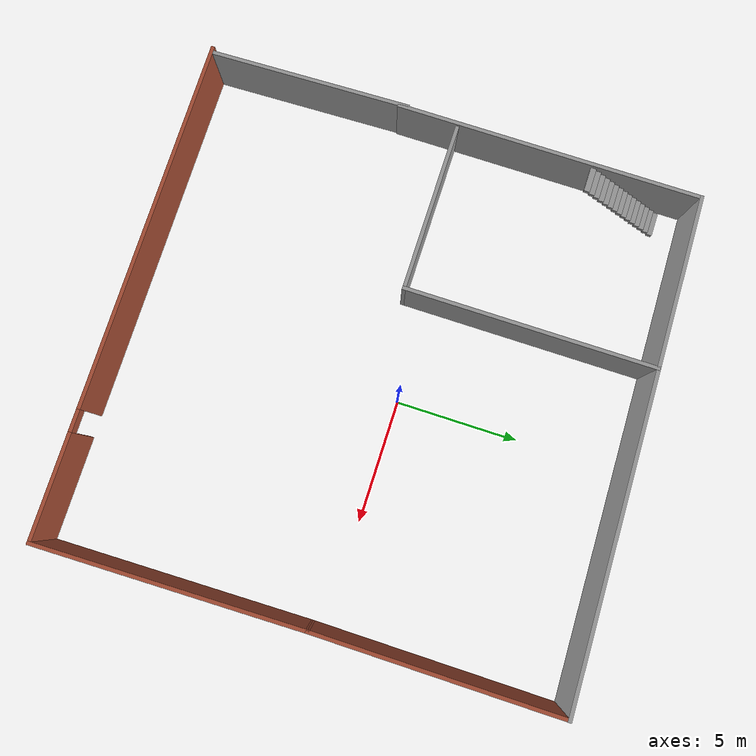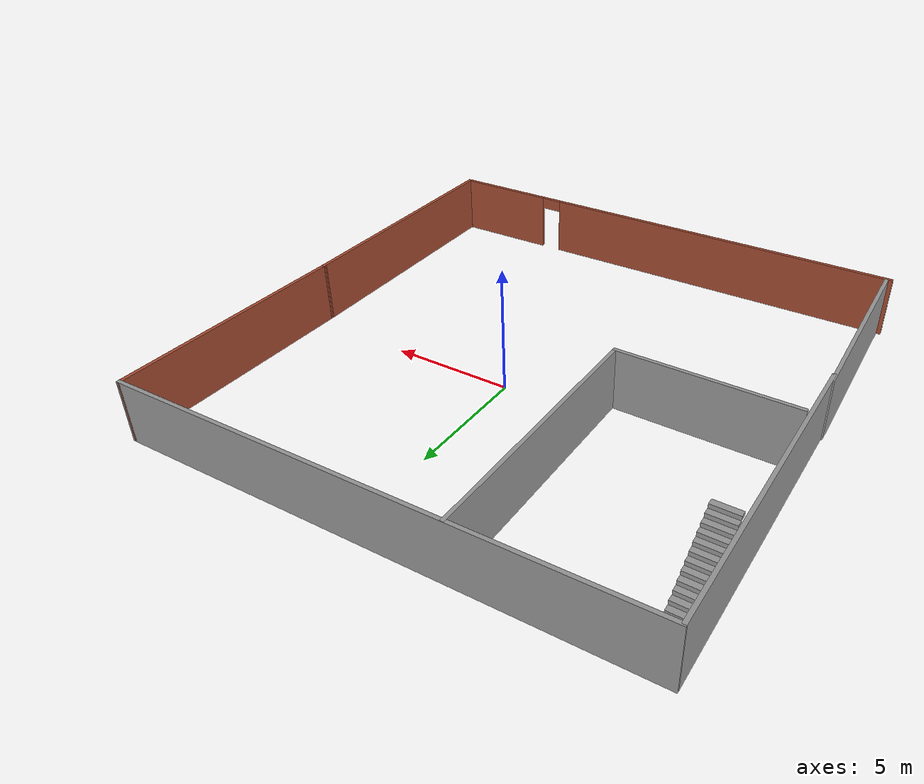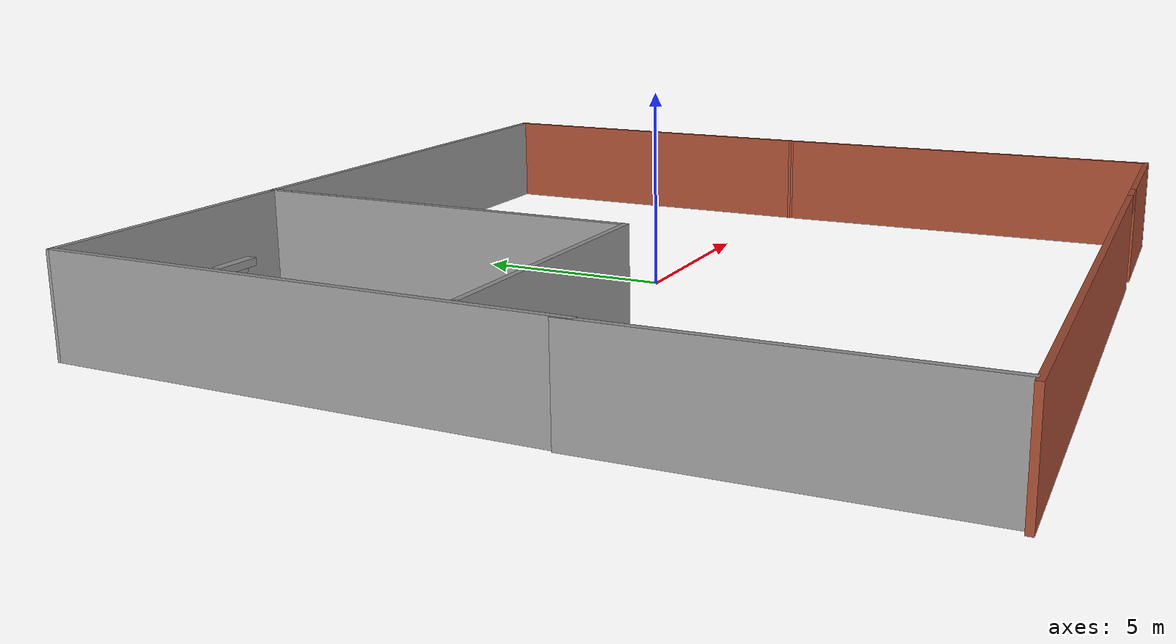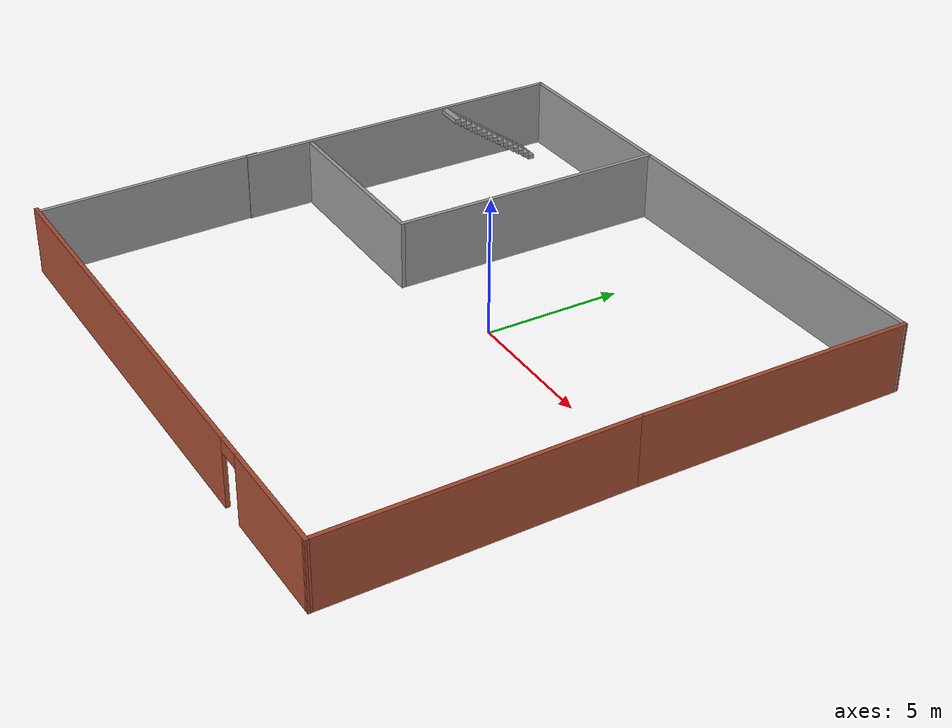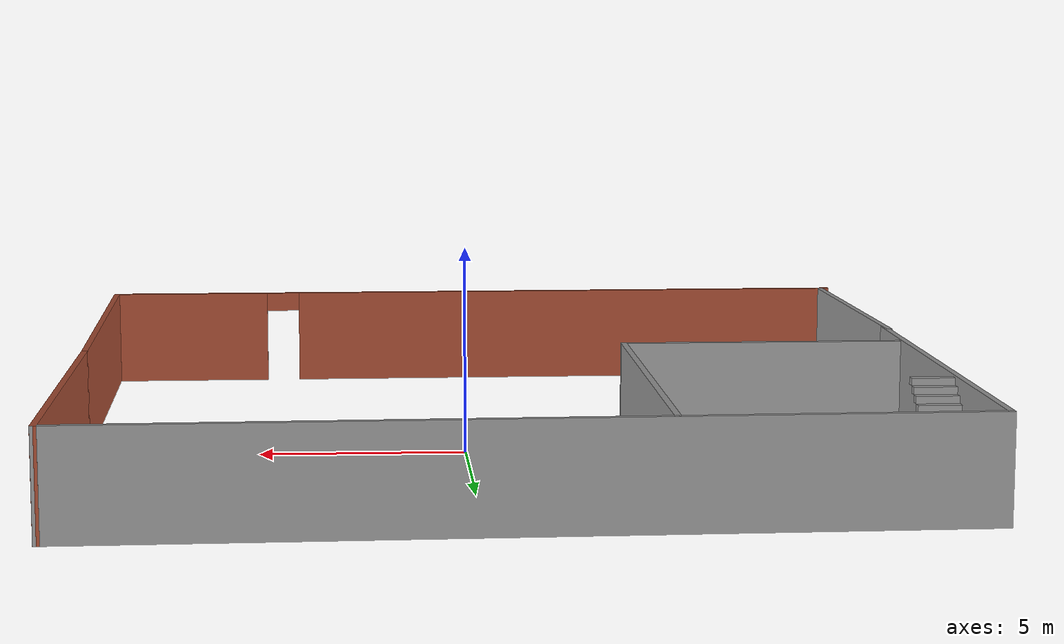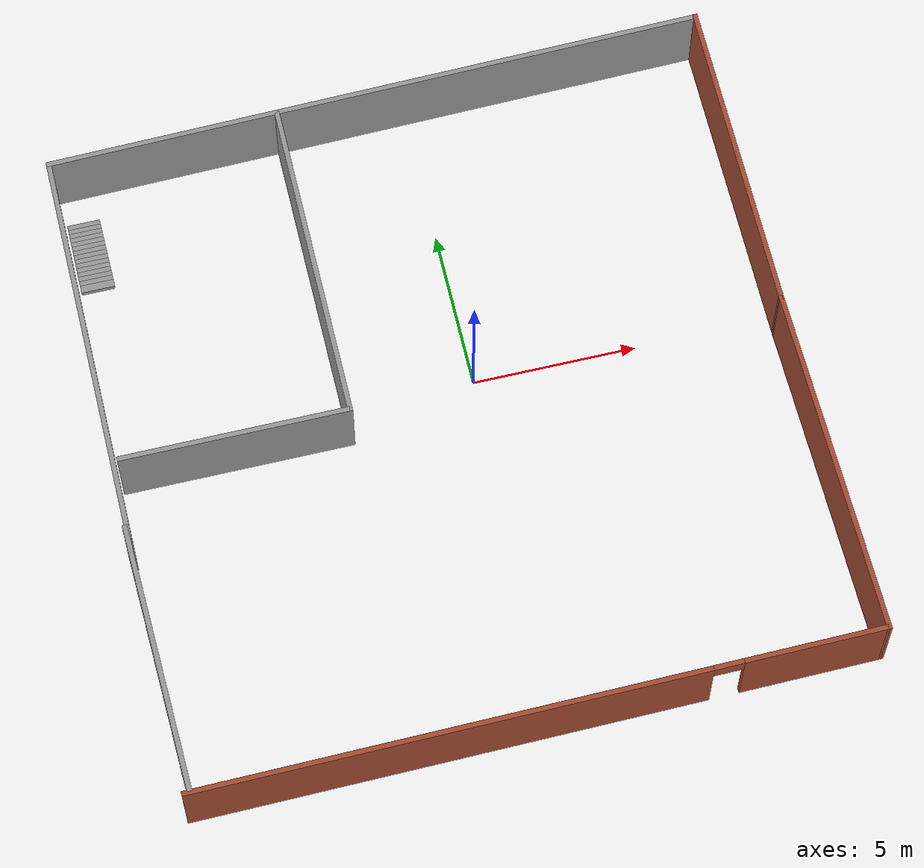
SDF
<?xml version='1.0'?>
<sdf version='1.6'>
  <model name='mybuilding'>
    <pose frame=''>-0.841687 -1.03925 0 0 -0 0</pose>
    <link name='Stairs_0'>
      <visual name='Stairs_0_Visual_0'>
        <pose frame=''>-9.54581 8.84688 0.083333 0 -0 0</pose>
        <geometry>
          <box>
            <size>1 0.233333 0.166667</size>
          </box>
        </geometry>
        <material>
          <script>
            <uri>file://media/materials/scripts/gazebo.material</uri>
            <name>Gazebo/Grey</name>
          </script>
          <ambient>1 1 1 1</ambient>
        </material>
        <meta>
          <layer>0</layer>
        </meta>
      </visual>
      <collision name='Stairs_0_Collision_0'>
        <geometry>
          <box>
            <size>1 0.233333 0.166667</size>
          </box>
        </geometry>
        <pose frame=''>-9.54581 8.84688 0.083333 0 -0 0</pose>
      </collision>
      <visual name='Stairs_0_Visual_1'>
        <pose frame=''>-9.54581 8.61355 0.25 0 -0 0</pose>
        <geometry>
          <box>
            <size>1 0.233333 0.166667</size>
          </box>
        </geometry>
        <material>
          <script>
            <uri>file://media/materials/scripts/gazebo.material</uri>
            <name>Gazebo/Grey</name>
          </script>
          <ambient>1 1 1 1</ambient>
        </material>
        <meta>
          <layer>0</layer>
        </meta>
      </visual>
      <collision name='Stairs_0_Collision_1'>
        <geometry>
          <box>
            <size>1 0.233333 0.166667</size>
          </box>
        </geometry>
        <pose frame=''>-9.54581 8.61355 0.25 0 -0 0</pose>
      </collision>
      <visual name='Stairs_0_Visual_2'>
        <pose frame=''>-9.54581 8.38021 0.416667 0 -0 0</pose>
        <geometry>
          <box>
            <size>1 0.233333 0.166667</size>
          </box>
        </geometry>
        <material>
          <script>
            <uri>file://media/materials/scripts/gazebo.material</uri>
            <name>Gazebo/Grey</name>
          </script>
          <ambient>1 1 1 1</ambient>
        </material>
        <meta>
          <layer>0</layer>
        </meta>
      </visual>
      <collision name='Stairs_0_Collision_2'>
        <geometry>
          <box>
            <size>1 0.233333 0.166667</size>
          </box>
        </geometry>
        <pose frame=''>-9.54581 8.38021 0.416667 0 -0 0</pose>
      </collision>
      <visual name='Stairs_0_Visual_3'>
        <pose frame=''>-9.54581 8.14688 0.583333 0 -0 0</pose>
        <geometry>
          <box>
            <size>1 0.233333 0.166667</size>
          </box>
        </geometry>
        <material>
          <script>
            <uri>file://media/materials/scripts/gazebo.material</uri>
            <name>Gazebo/Grey</name>
          </script>
          <ambient>1 1 1 1</ambient>
        </material>
        <meta>
          <layer>0</layer>
        </meta>
      </visual>
      <collision name='Stairs_0_Collision_3'>
        <geometry>
          <box>
            <size>1 0.233333 0.166667</size>
          </box>
        </geometry>
        <pose frame=''>-9.54581 8.14688 0.583333 0 -0 0</pose>
      </collision>
      <visual name='Stairs_0_Visual_4'>
        <pose frame=''>-9.54581 7.91355 0.75 0 -0 0</pose>
        <geometry>
          <box>
            <size>1 0.233333 0.166667</size>
          </box>
        </geometry>
        <material>
          <script>
            <uri>file://media/materials/scripts/gazebo.material</uri>
            <name>Gazebo/Grey</name>
          </script>
          <ambient>1 1 1 1</ambient>
        </material>
        <meta>
          <layer>0</layer>
        </meta>
      </visual>
      <collision name='Stairs_0_Collision_4'>
        <geometry>
          <box>
            <size>1 0.233333 0.166667</size>
          </box>
        </geometry>
        <pose frame=''>-9.54581 7.91355 0.75 0 -0 0</pose>
      </collision>
      <visual name='Stairs_0_Visual_5'>
        <pose frame=''>-9.54581 7.68021 0.916667 0 -0 0</pose>
        <geometry>
          <box>
            <size>1 0.233333 0.166667</size>
          </box>
        </geometry>
        <material>
          <script>
            <uri>file://media/materials/scripts/gazebo.material</uri>
            <name>Gazebo/Grey</name>
          </script>
          <ambient>1 1 1 1</ambient>
        </material>
        <meta>
          <layer>0</layer>
        </meta>
      </visual>
      <collision name='Stairs_0_Collision_5'>
        <geometry>
          <box>
            <size>1 0.233333 0.166667</size>
          </box>
        </geometry>
        <pose frame=''>-9.54581 7.68021 0.916667 0 -0 0</pose>
      </collision>
      <visual name='Stairs_0_Visual_6'>
        <pose frame=''>-9.54581 7.44688 1.08333 0 -0 0</pose>
        <geometry>
          <box>
            <size>1 0.233333 0.166667</size>
          </box>
        </geometry>
        <material>
          <script>
            <uri>file://media/materials/scripts/gazebo.material</uri>
            <name>Gazebo/Grey</name>
          </script>
          <ambient>1 1 1 1</ambient>
        </material>
        <meta>
          <layer>0</layer>
        </meta>
      </visual>
      <collision name='Stairs_0_Collision_6'>
        <geometry>
          <box>
            <size>1 0.233333 0.166667</size>
          </box>
        </geometry>
        <pose frame=''>-9.54581 7.44688 1.08333 0 -0 0</pose>
      </collision>
      <visual name='Stairs_0_Visual_7'>
        <pose frame=''>-9.54581 7.21355 1.25 0 -0 0</pose>
        <geometry>
          <box>
            <size>1 0.233333 0.166667</size>
          </box>
        </geometry>
        <material>
          <script>
            <uri>file://media/materials/scripts/gazebo.material</uri>
            <name>Gazebo/Grey</name>
          </script>
          <ambient>1 1 1 1</ambient>
        </material>
        <meta>
          <layer>0</layer>
        </meta>
      </visual>
      <collision name='Stairs_0_Collision_7'>
        <geometry>
          <box>
            <size>1 0.233333 0.166667</size>
          </box>
        </geometry>
        <pose frame=''>-9.54581 7.21355 1.25 0 -0 0</pose>
      </collision>
      <visual name='Stairs_0_Visual_8'>
        <pose frame=''>-9.54581 6.98021 1.41667 0 -0 0</pose>
        <geometry>
          <box>
            <size>1 0.233333 0.166667</size>
          </box>
        </geometry>
        <material>
          <script>
            <uri>file://media/materials/scripts/gazebo.material</uri>
            <name>Gazebo/Grey</name>
          </script>
          <ambient>1 1 1 1</ambient>
        </material>
        <meta>
          <layer>0</layer>
        </meta>
      </visual>
      <collision name='Stairs_0_Collision_8'>
        <geometry>
          <box>
            <size>1 0.233333 0.166667</size>
          </box>
        </geometry>
        <pose frame=''>-9.54581 6.98021 1.41667 0 -0 0</pose>
      </collision>
      <visual name='Stairs_0_Visual_9'>
        <pose frame=''>-9.54581 6.74688 1.58333 0 -0 0</pose>
        <geometry>
          <box>
            <size>1 0.233333 0.166667</size>
          </box>
        </geometry>
        <material>
          <script>
            <uri>file://media/materials/scripts/gazebo.material</uri>
            <name>Gazebo/Grey</name>
          </script>
          <ambient>1 1 1 1</ambient>
        </material>
        <meta>
          <layer>0</layer>
        </meta>
      </visual>
      <collision name='Stairs_0_Collision_9'>
        <geometry>
          <box>
            <size>1 0.233333 0.166667</size>
          </box>
        </geometry>
        <pose frame=''>-9.54581 6.74688 1.58333 0 -0 0</pose>
      </collision>
      <visual name='Stairs_0_Visual_10'>
        <pose frame=''>-9.54581 6.51355 1.75 0 -0 0</pose>
        <geometry>
          <box>
            <size>1 0.233333 0.166667</size>
          </box>
        </geometry>
        <material>
          <script>
            <uri>file://media/materials/scripts/gazebo.material</uri>
            <name>Gazebo/Grey</name>
          </script>
          <ambient>1 1 1 1</ambient>
        </material>
        <meta>
          <layer>0</layer>
        </meta>
      </visual>
      <collision name='Stairs_0_Collision_10'>
        <geometry>
          <box>
            <size>1 0.233333 0.166667</size>
          </box>
        </geometry>
        <pose frame=''>-9.54581 6.51355 1.75 0 -0 0</pose>
      </collision>
      <visual name='Stairs_0_Visual_11'>
        <pose frame=''>-9.54581 6.28021 1.91667 0 -0 0</pose>
        <geometry>
          <box>
            <size>1 0.233333 0.166667</size>
          </box>
        </geometry>
        <material>
          <script>
            <uri>file://media/materials/scripts/gazebo.material</uri>
            <name>Gazebo/Grey</name>
          </script>
          <ambient>1 1 1 1</ambient>
        </material>
        <meta>
          <layer>0</layer>
        </meta>
      </visual>
      <collision name='Stairs_0_Collision_11'>
        <geometry>
          <box>
            <size>1 0.233333 0.166667</size>
          </box>
        </geometry>
        <pose frame=''>-9.54581 6.28021 1.91667 0 -0 0</pose>
      </collision>
      <visual name='Stairs_0_Visual_12'>
        <pose frame=''>-9.54581 6.04688 2.08333 0 -0 0</pose>
        <geometry>
          <box>
            <size>1 0.233333 0.166667</size>
          </box>
        </geometry>
        <material>
          <script>
            <uri>file://media/materials/scripts/gazebo.material</uri>
            <name>Gazebo/Grey</name>
          </script>
          <ambient>1 1 1 1</ambient>
        </material>
        <meta>
          <layer>0</layer>
        </meta>
      </visual>
      <collision name='Stairs_0_Collision_12'>
        <geometry>
          <box>
            <size>1 0.233333 0.166667</size>
          </box>
        </geometry>
        <pose frame=''>-9.54581 6.04688 2.08333 0 -0 0</pose>
      </collision>
      <visual name='Stairs_0_Visual_13'>
        <pose frame=''>-9.54581 5.81355 2.25 0 -0 0</pose>
        <geometry>
          <box>
            <size>1 0.233333 0.166667</size>
          </box>
        </geometry>
        <material>
          <script>
            <uri>file://media/materials/scripts/gazebo.material</uri>
            <name>Gazebo/Grey</name>
          </script>
          <ambient>1 1 1 1</ambient>
        </material>
        <meta>
          <layer>0</layer>
        </meta>
      </visual>
      <collision name='Stairs_0_Collision_13'>
        <geometry>
          <box>
            <size>1 0.233333 0.166667</size>
          </box>
        </geometry>
        <pose frame=''>-9.54581 5.81355 2.25 0 -0 0</pose>
      </collision>
      <visual name='Stairs_0_Visual_14'>
        <pose frame=''>-9.54581 5.58021 2.41667 0 -0 0</pose>
        <geometry>
          <box>
            <size>1 0.233333 0.166667</size>
          </box>
        </geometry>
        <material>
          <script>
            <uri>file://media/materials/scripts/gazebo.material</uri>
            <name>Gazebo/Grey</name>
          </script>
          <ambient>1 1 1 1</ambient>
        </material>
        <meta>
          <layer>0</layer>
        </meta>
      </visual>
      <collision name='Stairs_0_Collision_14'>
        <geometry>
          <box>
            <size>1 0.233333 0.166667</size>
          </box>
        </geometry>
        <pose frame=''>-9.54581 5.58021 2.41667 0 -0 0</pose>
      </collision>
    </link>
    <link name='Wall_0'>
      <collision name='Wall_0_Collision'>
        <geometry>
          <box>
            <size>8.25946 0.15 2.5</size>
          </box>
        </geometry>
        <pose frame=''>0 0 1.25 0 -0 0</pose>
      </collision>
      <visual name='Wall_0_Visual'>
        <pose frame=''>0 0 1.25 0 -0 0</pose>
        <geometry>
          <box>
            <size>8.25946 0.15 2.5</size>
          </box>
        </geometry>
        <material>
          <script>
            <uri>file://media/materials/scripts/gazebo.material</uri>
            <name>Gazebo/Grey</name>
          </script>
          <ambient>1 1 1 1</ambient>
        </material>
        <meta>
          <layer>0</layer>
        </meta>
      </visual>
      <pose frame=''>-10.1469 -6.227 0 0 -0 -1.5447</pose>
    </link>
    <link name='Wall_1'>
      <pose frame=''>0.026737 -10.2804 0 0 -0 0.010345</pose>
      <visual name='Wall_1_Visual_0'>
        <pose frame=''>-2.62213 0 1.25 0 -0 0</pose>
        <geometry>
          <box>
            <size>15.3599 0.15 2.5</size>
          </box>
        </geometry>
        <material>
          <script>
            <uri>file://media/materials/scripts/gazebo.material</uri>
            <name>Gazebo/Bricks</name>
          </script>
          <ambient>1 1 1 1</ambient>
        </material>
        <meta>
          <layer>0</layer>
        </meta>
      </visual>
      <collision name='Wall_1_Collision_0'>
        <geometry>
          <box>
            <size>15.3599 0.15 2.5</size>
          </box>
        </geometry>
        <pose frame=''>-2.62213 0 1.25 0 -0 0</pose>
      </collision>
      <visual name='Wall_1_Visual_1'>
        <pose frame=''>8.12997 0 1.25 0 -0 0</pose>
        <geometry>
          <box>
            <size>4.34426 0.15 2.5</size>
          </box>
        </geometry>
        <material>
          <script>
            <uri>file://media/materials/scripts/gazebo.material</uri>
            <name>Gazebo/Bricks</name>
          </script>
          <ambient>1 1 1 1</ambient>
        </material>
        <meta>
          <layer>0</layer>
        </meta>
      </visual>
      <collision name='Wall_1_Collision_1'>
        <geometry>
          <box>
            <size>4.34426 0.15 2.5</size>
          </box>
        </geometry>
        <pose frame=''>8.12997 0 1.25 0 -0 0</pose>
      </collision>
      <visual name='Wall_1_Visual_2'>
        <pose frame=''>5.50783 0 2.25 0 -0 0</pose>
        <geometry>
          <box>
            <size>0.9 0.15 0.5</size>
          </box>
        </geometry>
        <material>
          <script>
            <uri>file://media/materials/scripts/gazebo.material</uri>
            <name>Gazebo/Bricks</name>
          </script>
          <ambient>1 1 1 1</ambient>
        </material>
        <meta>
          <layer>0</layer>
        </meta>
      </visual>
      <collision name='Wall_1_Collision_2'>
        <geometry>
          <box>
            <size>0.9 0.15 0.5</size>
          </box>
        </geometry>
        <pose frame=''>5.50783 0 2.25 0 -0 0</pose>
      </collision>
    </link>
    <link name='Wall_2'>
      <collision name='Wall_2_Collision'>
        <geometry>
          <box>
            <size>10.8616 0.15 2.5</size>
          </box>
        </geometry>
        <pose frame=''>0 0 1.25 0 -0 0</pose>
      </collision>
      <visual name='Wall_2_Visual'>
        <pose frame=''>0 0 1.25 0 -0 0</pose>
        <geometry>
          <box>
            <size>10.8616 0.15 2.5</size>
          </box>
        </geometry>
        <material>
          <script>
            <uri>file://media/materials/scripts/gazebo.material</uri>
            <name>Gazebo/Bricks</name>
          </script>
          <ambient>1 1 1 1</ambient>
        </material>
        <meta>
          <layer>0</layer>
        </meta>
      </visual>
      <pose frame=''>10.1555 -4.81965 0 0 -0 1.58905</pose>
    </link>
    <link name='Wall_21'>
      <collision name='Wall_21_Collision'>
        <geometry>
          <box>
            <size>10.25 0.15 2.5</size>
          </box>
        </geometry>
        <pose frame=''>0 0 1.25 0 -0 0</pose>
      </collision>
      <visual name='Wall_21_Visual'>
        <pose frame=''>0 0 1.25 0 -0 0</pose>
        <geometry>
          <box>
            <size>10.25 0.15 2.5</size>
          </box>
        </geometry>
        <material>
          <script>
            <uri>file://media/materials/scripts/gazebo.material</uri>
            <name>Gazebo/Grey</name>
          </script>
          <ambient>1 1 1 1</ambient>
        </material>
        <meta>
          <layer>0</layer>
        </meta>
      </visual>
      <pose frame=''>-3.14491 5.02015 0 0 -0 -1.5708</pose>
    </link>
    <link name='Wall_22'>
      <collision name='Wall_22_Collision'>
        <geometry>
          <box>
            <size>7 0.15 2.5</size>
          </box>
        </geometry>
        <pose frame=''>0 0 1.25 0 -0 0</pose>
      </collision>
      <visual name='Wall_22_Visual'>
        <pose frame=''>0 0 1.25 0 -0 0</pose>
        <geometry>
          <box>
            <size>7 0.15 2.5</size>
          </box>
        </geometry>
        <material>
          <script>
            <uri>file://media/materials/scripts/gazebo.material</uri>
            <name>Gazebo/Grey</name>
          </script>
          <ambient>1 1 1 1</ambient>
        </material>
        <meta>
          <layer>0</layer>
        </meta>
      </visual>
      <pose frame=''>-6.56991 -0.029854 0 0 -0 3.14159</pose>
    </link>
    <link name='Wall_5'>
      <collision name='Wall_5_Collision'>
        <geometry>
          <box>
            <size>10 0.15 2.5</size>
          </box>
        </geometry>
        <pose frame=''>0 0 1.25 0 -0 0</pose>
      </collision>
      <visual name='Wall_5_Visual'>
        <pose frame=''>0 0 1.25 0 -0 0</pose>
        <geometry>
          <box>
            <size>10 0.15 2.5</size>
          </box>
        </geometry>
        <material>
          <script>
            <uri>file://media/materials/scripts/gazebo.material</uri>
            <name>Gazebo/Bricks</name>
          </script>
          <ambient>1 1 1 1</ambient>
        </material>
        <meta>
          <layer>0</layer>
        </meta>
      </visual>
      <pose frame=''>10.0578 5.46025 0 0 -0 1.5708</pose>
    </link>
    <link name='Wall_6'>
      <collision name='Wall_6_Collision'>
        <geometry>
          <box>
            <size>20.4128 0.15 2.5</size>
          </box>
        </geometry>
        <pose frame=''>0 0 1.25 0 -0 0</pose>
      </collision>
      <visual name='Wall_6_Visual'>
        <pose frame=''>0 0 1.25 0 -0 0</pose>
        <geometry>
          <box>
            <size>20.4128 0.15 2.5</size>
          </box>
        </geometry>
        <material>
          <script>
            <uri>file://media/materials/scripts/gazebo.material</uri>
            <name>Gazebo/Grey</name>
          </script>
          <ambient>1 1 1 1</ambient>
        </material>
        <meta>
          <layer>0</layer>
        </meta>
      </visual>
      <pose frame=''>-0.071013 10.1558 0 0 -0 -3.11894</pose>
    </link>
    <link name='Wall_7'>
      <collision name='Wall_7_Collision'>
        <geometry>
          <box>
            <size>12.5 0.15 2.5</size>
          </box>
        </geometry>
        <pose frame=''>0 0 1.25 0 -0 0</pose>
      </collision>
      <visual name='Wall_7_Visual'>
        <pose frame=''>0 0 1.25 0 -0 0</pose>
        <geometry>
          <box>
            <size>12.5 0.15 2.5</size>
          </box>
        </geometry>
        <material>
          <script>
            <uri>file://media/materials/scripts/gazebo.material</uri>
            <name>Gazebo/Grey</name>
          </script>
          <ambient>1 1 1 1</ambient>
        </material>
        <meta>
          <layer>0</layer>
        </meta>
      </visual>
      <pose frame=''>-10.1998 3.69845 0 0 -0 -1.5708</pose>
    </link>
    <static>1</static>
  </model>
</sdf>
